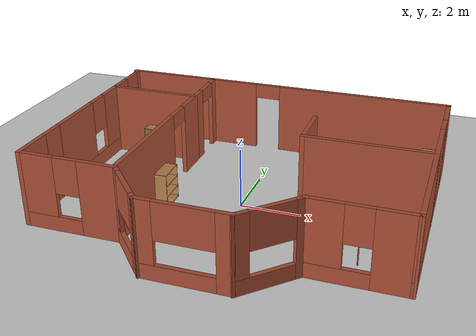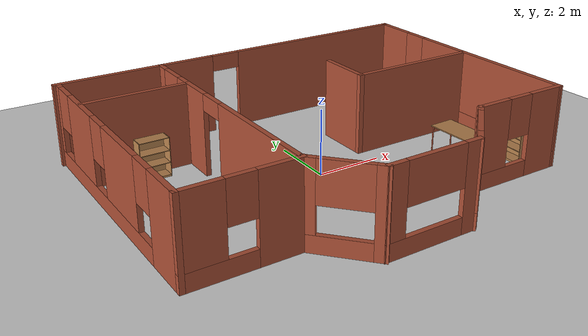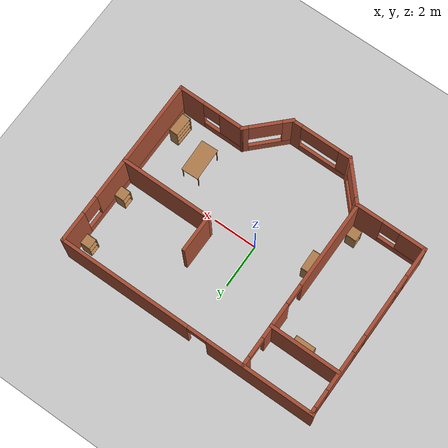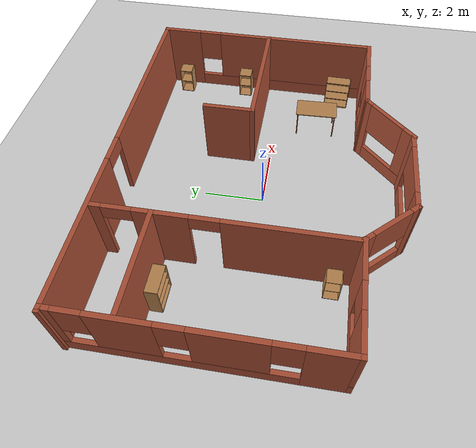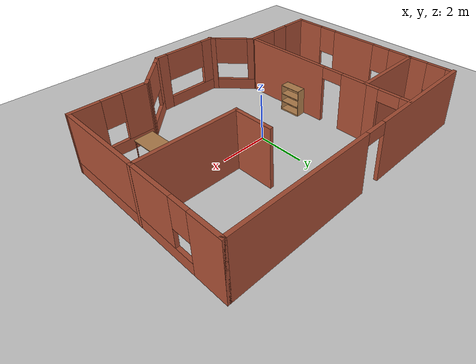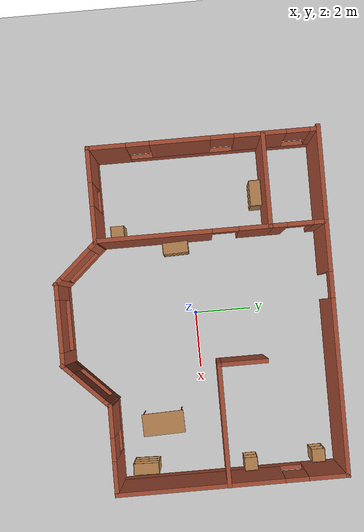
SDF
<sdf version="1.7">
 <world name="default">
  <light name="sun" type="directional">
   <pose>0 0 10 0 -0 0</pose>
   <diffuse>0.8 0.8 0.8 1</diffuse>
   <specular>0.2 0.2 0.2 1</specular>
   <attenuation>
    <range>1000</range>
    <constant>0.9</constant>
    <linear>0.01</linear>
    <quadratic>0.001</quadratic>
   </attenuation>
   <direction>-0.5 0.1 -0.9</direction>
  </light>
  <model name="ground_plane">
   <static>1</static>
   <link name="link">
    <collision name="collision">
     <geometry><plane><normal>0 0 1</normal><size>100 100</size></plane></geometry>
     <surface>
      <contact><collide_bitmask>65535</collide_bitmask></contact>
      <friction><ode><mu>100</mu><mu2>50</mu2></ode></friction>
     </surface>
    </collision>
    <visual name="visual">
     <cast_shadows>0</cast_shadows>
     <geometry><plane><normal>0 0 1</normal><size>100 100</size></plane></geometry>
     <material>
      <script><uri>file://media/materials/scripts/gazebo.material</uri><name>Gazebo/Grey</name></script>
     </material>
    </visual>
   </link>
  </model>
  <gravity>0 0 -9.8</gravity>
  <magnetic_field>6e-06 2.3e-05 -4.2e-05</magnetic_field>
  <atmosphere type="adiabatic"/>
  <physics name="default_physics" default="0" type="ode">
   <max_step_size>0.001</max_step_size>
   <real_time_factor>1</real_time_factor>
   <real_time_update_rate>1000</real_time_update_rate>
  </physics>
  <scene><ambient>0.4 0.4 0.4 1</ambient><background>0.7 0.7 0.7 1</background><shadows>1</shadows></scene>
  <spherical_coordinates>
   <surface_model>EARTH_WGS84</surface_model>
   <latitude_deg>0</latitude_deg>
   <longitude_deg>0</longitude_deg>
   <elevation>0</elevation>
   <heading_deg>0</heading_deg>
  </spherical_coordinates>
  <model name="apartment2">
   <link name="Wall_10">
    <pose>-4.26116 -3.17599 0 0 -0 3.14159</pose>
    <visual name="Wall_10_Visual_0">
     <pose>-1.01463 0 1.25 0 -0 0</pose>
     <geometry><box><size>1.29272 0.15 2.5</size></box></geometry>
     <material>
      <script><uri>file://media/materials/scripts/gazebo.material</uri><name>Gazebo/Bricks</name></script>
      <ambient>1 1 1 1</ambient>
     </material>
     <meta><layer>0</layer></meta>
    </visual>
    <collision name="Wall_10_Collision_0">
     <geometry><box><size>1.29272 0.15 2.5</size></box></geometry>
     <pose>-1.01463 0 1.25 0 -0 0</pose>
    </collision>
    <visual name="Wall_10_Visual_1">
     <pose>0.64636 0 0.25 0 -0 0</pose>
     <geometry><box><size>2.02925 0.15 0.5</size></box></geometry>
     <material>
      <script><uri>file://media/materials/scripts/gazebo.material</uri><name>Gazebo/Bricks</name></script>
      <ambient>1 1 1 1</ambient>
     </material>
     <meta><layer>0</layer></meta>
    </visual>
    <collision name="Wall_10_Collision_1">
     <geometry><box><size>2.02925 0.15 0.5</size></box></geometry>
     <pose>0.64636 0 0.25 0 -0 0</pose>
    </collision>
    <visual name="Wall_10_Visual_2">
     <pose>1.04636 0 1.5 0 -0 0</pose>
     <geometry><box><size>1.22925 0.15 2</size></box></geometry>
     <material>
      <script><uri>file://media/materials/scripts/gazebo.material</uri><name>Gazebo/Bricks</name></script>
      <ambient>1 1 1 1</ambient>
     </material>
     <meta><layer>0</layer></meta>
    </visual>
    <collision name="Wall_10_Collision_2">
     <geometry><box><size>1.22925 0.15 2</size></box></geometry>
     <pose>1.04636 0 1.5 0 -0 0</pose>
    </collision>
    <visual name="Wall_10_Visual_3">
     <pose>0.031734 0 1.9 0 -0 0</pose>
     <geometry><box><size>0.8 0.15 1.2</size></box></geometry>
     <material>
      <script><uri>file://media/materials/scripts/gazebo.material</uri><name>Gazebo/Bricks</name></script>
      <ambient>1 1 1 1</ambient>
     </material>
     <meta><layer>0</layer></meta>
    </visual>
    <collision name="Wall_10_Collision_3">
     <geometry><box><size>0.8 0.15 1.2</size></box></geometry>
     <pose>0.031734 0 1.9 0 -0 0</pose>
    </collision>
   </link>
   <link name="Wall_11">
    <pose>-5.84712 0.749005 0 0 -0 1.5708</pose>
    <visual name="Wall_11_Visual_0">
     <pose>-3.30802 0 1.25 0 -0 0</pose>
     <geometry><box><size>1.38396 0.15 2.5</size></box></geometry>
     <material>
      <script><uri>file://media/materials/scripts/gazebo.material</uri><name>Gazebo/Bricks</name></script>
      <ambient>1 1 1 1</ambient>
     </material>
     <meta><layer>0</layer></meta>
    </visual>
    <collision name="Wall_11_Collision_0">
     <geometry><box><size>1.38396 0.15 2.5</size></box></geometry>
     <pose>-3.30802 0 1.25 0 -0 0</pose>
    </collision>
    <visual name="Wall_11_Visual_1">
     <pose>0.691981 0 0.25 0 -0 0</pose>
     <geometry><box><size>6.61604 0.15 0.5</size></box></geometry>
     <material>
      <script><uri>file://media/materials/scripts/gazebo.material</uri><name>Gazebo/Bricks</name></script>
      <ambient>1 1 1 1</ambient>
     </material>
     <meta><layer>0</layer></meta>
    </visual>
    <collision name="Wall_11_Collision_1">
     <geometry><box><size>6.61604 0.15 0.5</size></box></geometry>
     <pose>0.691981 0 0.25 0 -0 0</pose>
    </collision>
    <visual name="Wall_11_Visual_2">
     <pose>-0.777617 0 1.5 0 -0 0</pose>
     <geometry><box><size>2.07684 0.15 2</size></box></geometry>
     <material>
      <script><uri>file://media/materials/scripts/gazebo.material</uri><name>Gazebo/Bricks</name></script>
      <ambient>1 1 1 1</ambient>
     </material>
     <meta><layer>0</layer></meta>
    </visual>
    <collision name="Wall_11_Collision_2">
     <geometry><box><size>2.07684 0.15 2</size></box></geometry>
     <pose>-0.777617 0 1.5 0 -0 0</pose>
    </collision>
    <visual name="Wall_11_Visual_3">
     <pose>1.95069 0 1.5 0 -0 0</pose>
     <geometry><box><size>1.77978 0.15 2</size></box></geometry>
     <material>
      <script><uri>file://media/materials/scripts/gazebo.material</uri><name>Gazebo/Bricks</name></script>
      <ambient>1 1 1 1</ambient>
     </material>
     <meta><layer>0</layer></meta>
    </visual>
    <collision name="Wall_11_Collision_3">
     <geometry><box><size>1.77978 0.15 2</size></box></geometry>
     <pose>1.95069 0 1.5 0 -0 0</pose>
    </collision>
    <visual name="Wall_11_Visual_4">
     <pose>3.82029 0 1.5 0 -0 0</pose>
     <geometry><box><size>0.359421 0.15 2</size></box></geometry>
     <material>
      <script><uri>file://media/materials/scripts/gazebo.material</uri><name>Gazebo/Bricks</name></script>
      <ambient>1 1 1 1</ambient>
     </material>
     <meta><layer>0</layer></meta>
    </visual>
    <collision name="Wall_11_Collision_4">
     <geometry><box><size>0.359421 0.15 2</size></box></geometry>
     <pose>3.82029 0 1.5 0 -0 0</pose>
    </collision>
    <visual name="Wall_11_Visual_5">
     <pose>-2.21604 0 1.9 0 -0 0</pose>
     <geometry><box><size>0.8 0.15 1.2</size></box></geometry>
     <material>
      <script><uri>file://media/materials/scripts/gazebo.material</uri><name>Gazebo/Bricks</name></script>
      <ambient>1 1 1 1</ambient>
     </material>
     <meta><layer>0</layer></meta>
    </visual>
    <collision name="Wall_11_Collision_5">
     <geometry><box><size>0.8 0.15 1.2</size></box></geometry>
     <pose>-2.21604 0 1.9 0 -0 0</pose>
    </collision>
    <visual name="Wall_11_Visual_6">
     <pose>0.660804 0 1.9 0 -0 0</pose>
     <geometry><box><size>0.8 0.15 1.2</size></box></geometry>
     <material>
      <script><uri>file://media/materials/scripts/gazebo.material</uri><name>Gazebo/Bricks</name></script>
      <ambient>1 1 1 1</ambient>
     </material>
     <meta><layer>0</layer></meta>
    </visual>
    <collision name="Wall_11_Collision_6">
     <geometry><box><size>0.8 0.15 1.2</size></box></geometry>
     <pose>0.660804 0 1.9 0 -0 0</pose>
    </collision>
    <visual name="Wall_11_Visual_7">
     <pose>3.24058 0 1.9 0 -0 0</pose>
     <geometry><box><size>0.8 0.15 1.2</size></box></geometry>
     <material>
      <script><uri>file://media/materials/scripts/gazebo.material</uri><name>Gazebo/Bricks</name></script>
      <ambient>1 1 1 1</ambient>
     </material>
     <meta><layer>0</layer></meta>
    </visual>
    <collision name="Wall_11_Collision_7">
     <geometry><box><size>0.8 0.15 1.2</size></box></geometry>
     <pose>3.24058 0 1.9 0 -0 0</pose>
    </collision>
   </link>
   <link name="Wall_13">
    <pose>-2.70325 3.71033 0 0 0 -1.5708</pose>
    <visual name="Wall_13_Visual_0">
     <pose>-0.773954 0 1.25 0 -0 0</pose>
     <geometry><box><size>0.452092 0.15 2.5</size></box></geometry>
     <material>
      <script><uri>file://media/materials/scripts/gazebo.material</uri><name>Gazebo/Bricks</name></script>
      <ambient>1 1 1 1</ambient>
     </material>
     <meta><layer>0</layer></meta>
    </visual>
    <collision name="Wall_13_Collision_0">
     <geometry><box><size>0.452092 0.15 2.5</size></box></geometry>
     <pose>-0.773954 0 1.25 0 -0 0</pose>
    </collision>
    <visual name="Wall_13_Visual_1">
     <pose>0.676046 0 1.25 0 -0 0</pose>
     <geometry><box><size>0.647908 0.15 2.5</size></box></geometry>
     <material>
      <script><uri>file://media/materials/scripts/gazebo.material</uri><name>Gazebo/Bricks</name></script>
      <ambient>1 1 1 1</ambient>
     </material>
     <meta><layer>0</layer></meta>
    </visual>
    <collision name="Wall_13_Collision_1">
     <geometry><box><size>0.647908 0.15 2.5</size></box></geometry>
     <pose>0.676046 0 1.25 0 -0 0</pose>
    </collision>
    <visual name="Wall_13_Visual_2">
     <pose>-0.097908 0 2.25 0 -0 0</pose>
     <geometry><box><size>0.9 0.15 0.5</size></box></geometry>
     <material>
      <script><uri>file://media/materials/scripts/gazebo.material</uri><name>Gazebo/Bricks</name></script>
      <ambient>1 1 1 1</ambient>
     </material>
     <meta><layer>0</layer></meta>
    </visual>
    <collision name="Wall_13_Collision_2">
     <geometry><box><size>0.9 0.15 0.5</size></box></geometry>
     <pose>-0.097908 0 2.25 0 -0 0</pose>
    </collision>
   </link>
   <link name="Wall_14">
    <collision name="Wall_14_Collision">
     <geometry><box><size>3.25 0.15 2.5</size></box></geometry>
     <pose>0 0 1.25 0 -0 0</pose>
    </collision>
    <visual name="Wall_14_Visual">
     <pose>0 0 1.25 0 -0 0</pose>
     <geometry><box><size>3.25 0.15 2.5</size></box></geometry>
     <material>
      <script><uri>file://media/materials/scripts/gazebo.material</uri><name>Gazebo/Bricks</name></script>
      <ambient>1 1 1 1</ambient>
     </material>
     <meta><layer>0</layer></meta>
    </visual>
    <pose>-4.25325 2.78533 0 0 -0 3.14159</pose>
   </link>
   <link name="Wall_16">
    <pose>-2.70325 -0.139673 0 0 0 -1.5708</pose>
    <visual name="Wall_16_Visual_0">
     <pose>-2.42236 0 1.25 0 -0 0</pose>
     <geometry><box><size>1.15529 0.15 2.5</size></box></geometry>
     <material>
      <script><uri>file://media/materials/scripts/gazebo.material</uri><name>Gazebo/Bricks</name></script>
      <ambient>1 1 1 1</ambient>
     </material>
     <meta><layer>0</layer></meta>
    </visual>
    <collision name="Wall_16_Collision_0">
     <geometry><box><size>1.15529 0.15 2.5</size></box></geometry>
     <pose>-2.42236 0 1.25 0 -0 0</pose>
    </collision>
    <visual name="Wall_16_Visual_1">
     <pose>1.02764 0 1.25 0 -0 0</pose>
     <geometry><box><size>3.94471 0.15 2.5</size></box></geometry>
     <material>
      <script><uri>file://media/materials/scripts/gazebo.material</uri><name>Gazebo/Bricks</name></script>
      <ambient>1 1 1 1</ambient>
     </material>
     <meta><layer>0</layer></meta>
    </visual>
    <collision name="Wall_16_Collision_1">
     <geometry><box><size>3.94471 0.15 2.5</size></box></geometry>
     <pose>1.02764 0 1.25 0 -0 0</pose>
    </collision>
    <visual name="Wall_16_Visual_2">
     <pose>-1.39471 0 2.25 0 -0 0</pose>
     <geometry><box><size>0.9 0.15 0.5</size></box></geometry>
     <material>
      <script><uri>file://media/materials/scripts/gazebo.material</uri><name>Gazebo/Bricks</name></script>
      <ambient>1 1 1 1</ambient>
     </material>
     <meta><layer>0</layer></meta>
    </visual>
    <collision name="Wall_16_Collision_2">
     <geometry><box><size>0.9 0.15 0.5</size></box></geometry>
     <pose>-1.39471 0 2.25 0 -0 0</pose>
    </collision>
   </link>
   <link name="Wall_18">
    <collision name="Wall_18_Collision">
     <geometry><box><size>4.25 0.15 2.5</size></box></geometry>
     <pose>0 0 1.25 0 -0 0</pose>
    </collision>
    <visual name="Wall_18_Visual">
     <pose>0 0 1.25 0 -0 0</pose>
     <geometry><box><size>4.25 0.15 2.5</size></box></geometry>
     <material>
      <script><uri>file://media/materials/scripts/gazebo.material</uri><name>Gazebo/Bricks</name></script>
      <ambient>1 1 1 1</ambient>
     </material>
     <meta><layer>0</layer></meta>
    </visual>
    <pose>3.87727 0.64371 0 0 -0 3.14159</pose>
   </link>
   <link name="Wall_19">
    <collision name="Wall_19_Collision">
     <geometry><box><size>1.75 0.15 2.5</size></box></geometry>
     <pose>0 0 1.25 0 -0 0</pose>
    </collision>
    <visual name="Wall_19_Visual">
     <pose>0 0 1.25 0 -0 0</pose>
     <geometry><box><size>1.75 0.15 2.5</size></box></geometry>
     <material>
      <script><uri>file://media/materials/scripts/gazebo.material</uri><name>Gazebo/Bricks</name></script>
      <ambient>1 1 1 1</ambient>
     </material>
     <meta><layer>0</layer></meta>
    </visual>
    <pose>1.82727 1.44371 0 0 -0 1.5708</pose>
   </link>
   <link name="Wall_4">
    <pose>-0.002273 4.67401 0 0 -0 0</pose>
    <visual name="Wall_4_Visual_0">
     <pose>-3.49667 0 1.25 0 -0 0</pose>
     <geometry><box><size>5.00665 0.15 2.5</size></box></geometry>
     <material>
      <script><uri>file://media/materials/scripts/gazebo.material</uri><name>Gazebo/Bricks</name></script>
      <ambient>1 1 1 1</ambient>
     </material>
     <meta><layer>0</layer></meta>
    </visual>
    <collision name="Wall_4_Collision_0">
     <geometry><box><size>5.00665 0.15 2.5</size></box></geometry>
     <pose>-3.49667 0 1.25 0 -0 0</pose>
    </collision>
    <visual name="Wall_4_Visual_1">
     <pose>2.95333 0 1.25 0 -0 0</pose>
     <geometry><box><size>6.09335 0.15 2.5</size></box></geometry>
     <material>
      <script><uri>file://media/materials/scripts/gazebo.material</uri><name>Gazebo/Bricks</name></script>
      <ambient>1 1 1 1</ambient>
     </material>
     <meta><layer>0</layer></meta>
    </visual>
    <collision name="Wall_4_Collision_1">
     <geometry><box><size>6.09335 0.15 2.5</size></box></geometry>
     <pose>2.95333 0 1.25 0 -0 0</pose>
    </collision>
    <visual name="Wall_4_Visual_2">
     <pose>-0.543346 0 2.25 0 -0 0</pose>
     <geometry><box><size>0.9 0.15 0.5</size></box></geometry>
     <material>
      <script><uri>file://media/materials/scripts/gazebo.material</uri><name>Gazebo/Bricks</name></script>
      <ambient>1 1 1 1</ambient>
     </material>
     <meta><layer>0</layer></meta>
    </visual>
    <collision name="Wall_4_Collision_2">
     <geometry><box><size>0.9 0.15 0.5</size></box></geometry>
     <pose>-0.543346 0 2.25 0 -0 0</pose>
    </collision>
   </link>
   <link name="Wall_5">
    <pose>5.92273 0.749005 0 0 0 -1.5708</pose>
    <visual name="Wall_5_Visual_0">
     <pose>-3.29652 0 1.25 0 -0 0</pose>
     <geometry><box><size>1.40697 0.15 2.5</size></box></geometry>
     <material>
      <script><uri>file://media/materials/scripts/gazebo.material</uri><name>Gazebo/Bricks</name></script>
      <ambient>1 1 1 1</ambient>
     </material>
     <meta><layer>0</layer></meta>
    </visual>
    <collision name="Wall_5_Collision_0">
     <geometry><box><size>1.40697 0.15 2.5</size></box></geometry>
     <pose>-3.29652 0 1.25 0 -0 0</pose>
    </collision>
    <visual name="Wall_5_Visual_1">
     <pose>0.703483 0 0.25 0 -0 0</pose>
     <geometry><box><size>6.59303 0.15 0.5</size></box></geometry>
     <material>
      <script><uri>file://media/materials/scripts/gazebo.material</uri><name>Gazebo/Bricks</name></script>
      <ambient>1 1 1 1</ambient>
     </material>
     <meta><layer>0</layer></meta>
    </visual>
    <collision name="Wall_5_Collision_1">
     <geometry><box><size>6.59303 0.15 0.5</size></box></geometry>
     <pose>0.703483 0 0.25 0 -0 0</pose>
    </collision>
    <visual name="Wall_5_Visual_2">
     <pose>1.10348 0 1.5 0 -0 0</pose>
     <geometry><box><size>5.79303 0.15 2</size></box></geometry>
     <material>
      <script><uri>file://media/materials/scripts/gazebo.material</uri><name>Gazebo/Bricks</name></script>
      <ambient>1 1 1 1</ambient>
     </material>
     <meta><layer>0</layer></meta>
    </visual>
    <collision name="Wall_5_Collision_2">
     <geometry><box><size>5.79303 0.15 2</size></box></geometry>
     <pose>1.10348 0 1.5 0 -0 0</pose>
    </collision>
    <visual name="Wall_5_Visual_3">
     <pose>-2.19303 0 1.9 0 -0 0</pose>
     <geometry><box><size>0.8 0.15 1.2</size></box></geometry>
     <material>
      <script><uri>file://media/materials/scripts/gazebo.material</uri><name>Gazebo/Bricks</name></script>
      <ambient>1 1 1 1</ambient>
     </material>
     <meta><layer>0</layer></meta>
    </visual>
    <collision name="Wall_5_Collision_3">
     <geometry><box><size>0.8 0.15 1.2</size></box></geometry>
     <pose>-2.19303 0 1.9 0 -0 0</pose>
    </collision>
   </link>
   <link name="Wall_6">
    <pose>4.41041 -3.16701 0 0 -0 3.13565</pose>
    <visual name="Wall_6_Visual_0">
     <pose>-0.973207 0 1.25 0 -0 0</pose>
     <geometry><box><size>1.22827 0.15 2.5</size></box></geometry>
     <material>
      <script><uri>file://media/materials/scripts/gazebo.material</uri><name>Gazebo/Bricks</name></script>
      <ambient>1 1 1 1</ambient>
     </material>
     <meta><layer>0</layer></meta>
    </visual>
    <collision name="Wall_6_Collision_0">
     <geometry><box><size>1.22827 0.15 2.5</size></box></geometry>
     <pose>-0.973207 0 1.25 0 -0 0</pose>
    </collision>
    <visual name="Wall_6_Visual_1">
     <pose>0.614136 0 0.25 0 -0 0</pose>
     <geometry><box><size>1.94641 0.15 0.5</size></box></geometry>
     <material>
      <script><uri>file://media/materials/scripts/gazebo.material</uri><name>Gazebo/Bricks</name></script>
      <ambient>1 1 1 1</ambient>
     </material>
     <meta><layer>0</layer></meta>
    </visual>
    <collision name="Wall_6_Collision_1">
     <geometry><box><size>1.94641 0.15 0.5</size></box></geometry>
     <pose>0.614136 0 0.25 0 -0 0</pose>
    </collision>
    <visual name="Wall_6_Visual_2">
     <pose>1.01414 0 1.5 0 -0 0</pose>
     <geometry><box><size>1.14641 0.15 2</size></box></geometry>
     <material>
      <script><uri>file://media/materials/scripts/gazebo.material</uri><name>Gazebo/Bricks</name></script>
      <ambient>1 1 1 1</ambient>
     </material>
     <meta><layer>0</layer></meta>
    </visual>
    <collision name="Wall_6_Collision_2">
     <geometry><box><size>1.14641 0.15 2</size></box></geometry>
     <pose>1.01414 0 1.5 0 -0 0</pose>
    </collision>
    <visual name="Wall_6_Visual_3">
     <pose>0.040929 0 1.9 0 -0 0</pose>
     <geometry><box><size>0.8 0.15 1.2</size></box></geometry>
     <material>
      <script><uri>file://media/materials/scripts/gazebo.material</uri><name>Gazebo/Bricks</name></script>
      <ambient>1 1 1 1</ambient>
     </material>
     <meta><layer>0</layer></meta>
    </visual>
    <collision name="Wall_6_Collision_3">
     <geometry><box><size>0.8 0.15 1.2</size></box></geometry>
     <pose>0.040929 0 1.9 0 -0 0</pose>
    </collision>
   </link>
   <link name="Wall_7">
    <pose>2.15563 -3.90048 0 0 0 -2.35619</pose>
    <visual name="Wall_7_Visual_0">
     <pose>-0.960163 0 1.25 0 -0 0</pose>
     <geometry><box><size>0.329675 0.15 2.5</size></box></geometry>
     <material>
      <script><uri>file://media/materials/scripts/gazebo.material</uri><name>Gazebo/Bricks</name></script>
      <ambient>1 1 1 1</ambient>
     </material>
     <meta><layer>0</layer></meta>
    </visual>
    <collision name="Wall_7_Collision_0">
     <geometry><box><size>0.329675 0.15 2.5</size></box></geometry>
     <pose>-0.960163 0 1.25 0 -0 0</pose>
    </collision>
    <visual name="Wall_7_Visual_1">
     <pose>0.164837 0 0.25 0 -0 0</pose>
     <geometry><box><size>1.92033 0.15 0.5</size></box></geometry>
     <material>
      <script><uri>file://media/materials/scripts/gazebo.material</uri><name>Gazebo/Bricks</name></script>
      <ambient>1 1 1 1</ambient>
     </material>
     <meta><layer>0</layer></meta>
    </visual>
    <collision name="Wall_7_Collision_1">
     <geometry><box><size>1.92033 0.15 0.5</size></box></geometry>
     <pose>0.164837 0 0.25 0 -0 0</pose>
    </collision>
    <visual name="Wall_7_Visual_2">
     <pose>0.864837 0 1.5 0 -0 0</pose>
     <geometry><box><size>0.520325 0.15 2</size></box></geometry>
     <material>
      <script><uri>file://media/materials/scripts/gazebo.material</uri><name>Gazebo/Bricks</name></script>
      <ambient>1 1 1 1</ambient>
     </material>
     <meta><layer>0</layer></meta>
    </visual>
    <collision name="Wall_7_Collision_2">
     <geometry><box><size>0.520325 0.15 2</size></box></geometry>
     <pose>0.864837 0 1.5 0 -0 0</pose>
    </collision>
    <visual name="Wall_7_Visual_3">
     <pose>-0.095325 0 1.9 0 -0 0</pose>
     <geometry><box><size>1.4 0.15 1.2</size></box></geometry>
     <material>
      <script><uri>file://media/materials/scripts/gazebo.material</uri><name>Gazebo/Bricks</name></script>
      <ambient>1 1 1 1</ambient>
     </material>
     <meta><layer>0</layer></meta>
    </visual>
    <collision name="Wall_7_Collision_3">
     <geometry><box><size>1.4 0.15 1.2</size></box></geometry>
     <pose>-0.095325 0 1.9 0 -0 0</pose>
    </collision>
   </link>
   <link name="Wall_8">
    <pose>0.033121 -4.62496 0 0 -0 3.14159</pose>
    <visual name="Wall_8_Visual_0">
     <pose>-1.19382 0 1.25 0 -0 0</pose>
     <geometry><box><size>0.522461 0.15 2.5</size></box></geometry>
     <material>
      <script><uri>file://media/materials/scripts/gazebo.material</uri><name>Gazebo/Bricks</name></script>
      <ambient>1 1 1 1</ambient>
     </material>
     <meta><layer>0</layer></meta>
    </visual>
    <collision name="Wall_8_Collision_0">
     <geometry><box><size>0.522461 0.15 2.5</size></box></geometry>
     <pose>-1.19382 0 1.25 0 -0 0</pose>
    </collision>
    <visual name="Wall_8_Visual_1">
     <pose>0.261231 0 0.25 0 -0 0</pose>
     <geometry><box><size>2.38764 0.15 0.5</size></box></geometry>
     <material>
      <script><uri>file://media/materials/scripts/gazebo.material</uri><name>Gazebo/Bricks</name></script>
      <ambient>1 1 1 1</ambient>
     </material>
     <meta><layer>0</layer></meta>
    </visual>
    <collision name="Wall_8_Collision_1">
     <geometry><box><size>2.38764 0.15 0.5</size></box></geometry>
     <pose>0.261231 0 0.25 0 -0 0</pose>
    </collision>
    <visual name="Wall_8_Visual_2">
     <pose>1.16123 0 1.5 0 -0 0</pose>
     <geometry><box><size>0.587637 0.15 2</size></box></geometry>
     <material>
      <script><uri>file://media/materials/scripts/gazebo.material</uri><name>Gazebo/Bricks</name></script>
      <ambient>1 1 1 1</ambient>
     </material>
     <meta><layer>0</layer></meta>
    </visual>
    <collision name="Wall_8_Collision_2">
     <geometry><box><size>0.587637 0.15 2</size></box></geometry>
     <pose>1.16123 0 1.5 0 -0 0</pose>
    </collision>
    <visual name="Wall_8_Visual_3">
     <pose>-0.032588 0 1.9 0 -0 0</pose>
     <geometry><box><size>1.8 0.15 1.2</size></box></geometry>
     <material>
      <script><uri>file://media/materials/scripts/gazebo.material</uri><name>Gazebo/Bricks</name></script>
      <ambient>1 1 1 1</ambient>
     </material>
     <meta><layer>0</layer></meta>
    </visual>
    <collision name="Wall_8_Collision_3">
     <geometry><box><size>1.8 0.15 1.2</size></box></geometry>
     <pose>-0.032588 0 1.9 0 -0 0</pose>
    </collision>
   </link>
   <link name="Wall_9">
    <pose>-2.01106 -3.90048 0 0 -0 2.30057</pose>
    <visual name="Wall_9_Visual_0">
     <pose>-0.895676 0 1.25 0 -0 0</pose>
     <geometry><box><size>0.350961 0.15 2.5</size></box></geometry>
     <material>
      <script><uri>file://media/materials/scripts/gazebo.material</uri><name>Gazebo/Bricks</name></script>
      <ambient>1 1 1 1</ambient>
     </material>
     <meta><layer>0</layer></meta>
    </visual>
    <collision name="Wall_9_Collision_0">
     <geometry><box><size>0.350961 0.15 2.5</size></box></geometry>
     <pose>-0.895676 0 1.25 0 -0 0</pose>
    </collision>
    <visual name="Wall_9_Visual_1">
     <pose>0.175481 0 0.25 0 -0 0</pose>
     <geometry><box><size>1.79135 0.15 0.5</size></box></geometry>
     <material>
      <script><uri>file://media/materials/scripts/gazebo.material</uri><name>Gazebo/Bricks</name></script>
      <ambient>1 1 1 1</ambient>
     </material>
     <meta><layer>0</layer></meta>
    </visual>
    <collision name="Wall_9_Collision_1">
     <geometry><box><size>1.79135 0.15 0.5</size></box></geometry>
     <pose>0.175481 0 0.25 0 -0 0</pose>
    </collision>
    <visual name="Wall_9_Visual_2">
     <pose>0.875481 0 1.5 0 -0 0</pose>
     <geometry><box><size>0.391351 0.15 2</size></box></geometry>
     <material>
      <script><uri>file://media/materials/scripts/gazebo.material</uri><name>Gazebo/Bricks</name></script>
      <ambient>1 1 1 1</ambient>
     </material>
     <meta><layer>0</layer></meta>
    </visual>
    <collision name="Wall_9_Collision_2">
     <geometry><box><size>0.391351 0.15 2</size></box></geometry>
     <pose>0.875481 0 1.5 0 -0 0</pose>
    </collision>
    <visual name="Wall_9_Visual_3">
     <pose>-0.020195 0 1.9 0 -0 0</pose>
     <geometry><box><size>1.4 0.15 1.2</size></box></geometry>
     <material>
      <script><uri>file://media/materials/scripts/gazebo.material</uri><name>Gazebo/Bricks</name></script>
      <ambient>1 1 1 1</ambient>
     </material>
     <meta><layer>0</layer></meta>
    </visual>
    <collision name="Wall_9_Collision_3">
     <geometry><box><size>1.4 0.15 1.2</size></box></geometry>
     <pose>-0.020195 0 1.9 0 -0 0</pose>
    </collision>
   </link>
   <static>1</static>
  </model>
  <model name="bookshelf">
   <static>1</static>
   <link name="link">
    <inertial><mass>1</mass></inertial>
    <collision name="back">
     <pose>0 0.005 0.6 0 -0 0</pose>
     <geometry><box><size>0.9 0.01 1.2</size></box></geometry>
    </collision>
    <visual name="visual1">
     <pose>0 0.005 0.6 0 -0 0</pose>
     <geometry><box><size>0.9 0.01 1.2</size></box></geometry>
     <material>
      <script><uri>file://media/materials/scripts/gazebo.material</uri><name>Gazebo/Wood</name></script>
     </material>
    </visual>
    <collision name="left_side">
     <pose>0.45 -0.195 0.6 0 -0 0</pose>
     <geometry><box><size>0.02 0.4 1.2</size></box></geometry>
    </collision>
    <visual name="visual2">
     <pose>0.45 -0.195 0.6 0 -0 0</pose>
     <geometry><box><size>0.02 0.4 1.2</size></box></geometry>
     <material>
      <script><uri>file://media/materials/scripts/gazebo.material</uri><name>Gazebo/Wood</name></script>
     </material>
    </visual>
    <collision name="right_side">
     <pose>-0.45 -0.195 0.6 0 -0 0</pose>
     <geometry><box><size>0.02 0.4 1.2</size></box></geometry>
    </collision>
    <visual name="visual3">
     <pose>-0.45 -0.195 0.6 0 -0 0</pose>
     <geometry><box><size>0.02 0.4 1.2</size></box></geometry>
     <material>
      <script><uri>file://media/materials/scripts/gazebo.material</uri><name>Gazebo/Wood</name></script>
     </material>
    </visual>
    <collision name="bottom">
     <pose>0 -0.195 0.03 0 -0 0</pose>
     <geometry><box><size>0.88 0.4 0.06</size></box></geometry>
    </collision>
    <visual name="visual4">
     <pose>0 -0.195 0.03 0 -0 0</pose>
     <geometry><box><size>0.88 0.4 0.06</size></box></geometry>
     <material>
      <script><uri>file://media/materials/scripts/gazebo.material</uri><name>Gazebo/Wood</name></script>
     </material>
    </visual>
    <collision name="top">
     <pose>0 -0.195 1.19 0 -0 0</pose>
     <geometry><box><size>0.88 0.4 0.02</size></box></geometry>
    </collision>
    <visual name="visual5">
     <pose>0 -0.195 1.19 0 -0 0</pose>
     <geometry><box><size>0.88 0.4 0.02</size></box></geometry>
     <material>
      <script><uri>file://media/materials/scripts/gazebo.material</uri><name>Gazebo/Wood</name></script>
     </material>
    </visual>
    <collision name="low_shelf">
     <pose>0 -0.195 0.43 0 -0 0</pose>
     <geometry><box><size>0.88 0.4 0.02</size></box></geometry>
    </collision>
    <visual name="visual6">
     <pose>0 -0.195 0.43 0 -0 0</pose>
     <geometry><box><size>0.88 0.4 0.02</size></box></geometry>
     <material>
      <script><uri>file://media/materials/scripts/gazebo.material</uri><name>Gazebo/Wood</name></script>
     </material>
    </visual>
    <collision name="high_shelf">
     <pose>0 -0.195 0.8 0 -0 0</pose>
     <geometry><box><size>0.88 0.4 0.02</size></box></geometry>
    </collision>
    <visual name="visual7">
     <pose>0 -0.195 0.8 0 -0 0</pose>
     <geometry><box><size>0.88 0.4 0.02</size></box></geometry>
     <material>
      <script><uri>file://media/materials/scripts/gazebo.material</uri><name>Gazebo/Wood</name></script>
     </material>
    </visual>
   </link>
   <pose>-2.56264 -0.533246 0 0 -0 1.6</pose>
  </model>
  <model name="bookshelf_0">
   <static>1</static>
   <link name="link">
    <inertial><mass>1</mass></inertial>
    <collision name="back">
     <pose>0 0.005 0.6 0 -0 0</pose>
     <geometry><box><size>0.9 0.01 1.2</size></box></geometry>
    </collision>
    <visual name="visual1">
     <pose>0 0.005 0.6 0 -0 0</pose>
     <geometry><box><size>0.9 0.01 1.2</size></box></geometry>
     <material>
      <script><uri>file://media/materials/scripts/gazebo.material</uri><name>Gazebo/Wood</name></script>
     </material>
    </visual>
    <collision name="left_side">
     <pose>0.45 -0.195 0.6 0 -0 0</pose>
     <geometry><box><size>0.02 0.4 1.2</size></box></geometry>
    </collision>
    <visual name="visual2">
     <pose>0.45 -0.195 0.6 0 -0 0</pose>
     <geometry><box><size>0.02 0.4 1.2</size></box></geometry>
     <material>
      <script><uri>file://media/materials/scripts/gazebo.material</uri><name>Gazebo/Wood</name></script>
     </material>
    </visual>
    <collision name="right_side">
     <pose>-0.45 -0.195 0.6 0 -0 0</pose>
     <geometry><box><size>0.02 0.4 1.2</size></box></geometry>
    </collision>
    <visual name="visual3">
     <pose>-0.45 -0.195 0.6 0 -0 0</pose>
     <geometry><box><size>0.02 0.4 1.2</size></box></geometry>
     <material>
      <script><uri>file://media/materials/scripts/gazebo.material</uri><name>Gazebo/Wood</name></script>
     </material>
    </visual>
    <collision name="bottom">
     <pose>0 -0.195 0.03 0 -0 0</pose>
     <geometry><box><size>0.88 0.4 0.06</size></box></geometry>
    </collision>
    <visual name="visual4">
     <pose>0 -0.195 0.03 0 -0 0</pose>
     <geometry><box><size>0.88 0.4 0.06</size></box></geometry>
     <material>
      <script><uri>file://media/materials/scripts/gazebo.material</uri><name>Gazebo/Wood</name></script>
     </material>
    </visual>
    <collision name="top">
     <pose>0 -0.195 1.19 0 -0 0</pose>
     <geometry><box><size>0.88 0.4 0.02</size></box></geometry>
    </collision>
    <visual name="visual5">
     <pose>0 -0.195 1.19 0 -0 0</pose>
     <geometry><box><size>0.88 0.4 0.02</size></box></geometry>
     <material>
      <script><uri>file://media/materials/scripts/gazebo.material</uri><name>Gazebo/Wood</name></script>
     </material>
    </visual>
    <collision name="low_shelf">
     <pose>0 -0.195 0.43 0 -0 0</pose>
     <geometry><box><size>0.88 0.4 0.02</size></box></geometry>
    </collision>
    <visual name="visual6">
     <pose>0 -0.195 0.43 0 -0 0</pose>
     <geometry><box><size>0.88 0.4 0.02</size></box></geometry>
     <material>
      <script><uri>file://media/materials/scripts/gazebo.material</uri><name>Gazebo/Wood</name></script>
     </material>
    </visual>
    <collision name="high_shelf">
     <pose>0 -0.195 0.8 0 -0 0</pose>
     <geometry><box><size>0.88 0.4 0.02</size></box></geometry>
    </collision>
    <visual name="visual7">
     <pose>0 -0.195 0.8 0 -0 0</pose>
     <geometry><box><size>0.88 0.4 0.02</size></box></geometry>
     <material>
      <script><uri>file://media/materials/scripts/gazebo.material</uri><name>Gazebo/Wood</name></script>
     </material>
    </visual>
   </link>
   <pose>-4.0527 2.66789 0 0 -0 0</pose>
  </model>
  <model name="table">
   <static>1</static>
   <link name="link">
    <collision name="surface">
     <pose>0 0 1 0 -0 0</pose>
     <geometry><box><size>1.5 0.8 0.03</size></box></geometry>
     <surface><friction><ode><mu>0.6</mu><mu2>0.6</mu2></ode></friction></surface>
    </collision>
    <visual name="visual1">
     <pose>0 0 1 0 -0 0</pose>
     <geometry><box><size>1.5 0.8 0.03</size></box></geometry>
     <material>
      <script><uri>file://media/materials/scripts/gazebo.material</uri><name>Gazebo/Wood</name></script>
     </material>
    </visual>
    <collision name="front_left_leg">
     <pose>0.68 0.38 0.5 0 -0 0</pose>
     <geometry><cylinder><radius>0.02</radius><length>1</length></cylinder></geometry>
    </collision>
    <visual name="front_left_leg">
     <pose>0.68 0.38 0.5 0 -0 0</pose>
     <geometry><cylinder><radius>0.02</radius><length>1</length></cylinder></geometry>
     <material>
      <script><uri>file://media/materials/scripts/gazebo.material</uri><name>Gazebo/Bricks</name></script>
     </material>
    </visual>
    <collision name="front_right_leg">
     <pose>0.68 -0.38 0.5 0 -0 0</pose>
     <geometry><cylinder><radius>0.02</radius><length>1</length></cylinder></geometry>
    </collision>
    <visual name="front_right_leg">
     <pose>0.68 -0.38 0.5 0 -0 0</pose>
     <geometry><cylinder><radius>0.02</radius><length>1</length></cylinder></geometry>
     <material>
      <script><uri>file://media/materials/scripts/gazebo.material</uri><name>Gazebo/Bricks</name></script>
     </material>
    </visual>
    <collision name="back_right_leg">
     <pose>-0.68 -0.38 0.5 0 -0 0</pose>
     <geometry><cylinder><radius>0.02</radius><length>1</length></cylinder></geometry>
    </collision>
    <visual name="back_right_leg">
     <pose>-0.68 -0.38 0.5 0 -0 0</pose>
     <geometry><cylinder><radius>0.02</radius><length>1</length></cylinder></geometry>
     <material>
      <script><uri>file://media/materials/scripts/gazebo.material</uri><name>Gazebo/Bricks</name></script>
     </material>
    </visual>
    <collision name="back_left_leg">
     <pose>-0.68 0.38 0.5 0 -0 0</pose>
     <geometry><cylinder><radius>0.02</radius><length>1</length></cylinder></geometry>
    </collision>
    <visual name="back_left_leg">
     <pose>-0.68 0.38 0.5 0 -0 0</pose>
     <geometry><cylinder><radius>0.02</radius><length>1</length></cylinder></geometry>
     <material>
      <script><uri>file://media/materials/scripts/gazebo.material</uri><name>Gazebo/Bricks</name></script>
     </material>
    </visual>
   </link>
   <pose>3.84964 -1.49718 0 0 -0 1.6</pose>
  </model>
  <plugin name="collision_map_creator" filename="libcollision_map_creator.so"/>
  <model name="cabinet">
   <static>1</static>
   <link name="cabinet_bottom_plate">
    <inertial>
     <pose>0 0 -1 0 -0 0</pose>
     <inertia><ixx>2.05</ixx><ixy>0</ixy><ixz>0</ixz><iyy>2.05</iyy><iyz>0</iyz><izz>2.05</izz></inertia>
     <mass>25</mass>
    </inertial>
    <collision name="cabinet_bottom_plate_geom">
     <pose>0 0 0.01 0 -0 0</pose>
     <geometry><box><size>0.45 0.45 0.02</size></box></geometry>
    </collision>
    <visual name="cabinet_bottom_plate_geom_visual">
     <pose>0 0 0.01 0 -0 0</pose>
     <geometry><box><size>0.45 0.45 0.02</size></box></geometry>
     <material>
      <script><uri>file://media/materials/scripts/gazebo.material</uri><name>Gazebo/Wood</name></script>
     </material>
    </visual>
    <collision name="cabinet_bottom_plate_geom_cabinet_back_plate">
     <pose>0.235 0 0.51 0 -0 0</pose>
     <geometry><box><size>0.02 0.45 1.02</size></box></geometry>
    </collision>
    <visual name="cabinet_bottom_plate_geom_cabinet_back_plate_visual">
     <pose>0.235 0 0.51 0 -0 0</pose>
     <geometry><box><size>0.02 0.45 1.02</size></box></geometry>
     <material>
      <script><uri>file://media/materials/scripts/gazebo.material</uri><name>Gazebo/Wood</name></script>
     </material>
    </visual>
    <collision name="cabinet_bottom_plate_geom_cabinet_left_plate">
     <pose>0 0.235 0.51 0 -0 0</pose>
     <geometry><box><size>0.45 0.02 1.02</size></box></geometry>
    </collision>
    <visual name="cabinet_bottom_plate_geom_cabinet_left_plate_visual">
     <pose>0 0.235 0.51 0 -0 0</pose>
     <geometry><box><size>0.45 0.02 1.02</size></box></geometry>
     <material>
      <script><uri>file://media/materials/scripts/gazebo.material</uri><name>Gazebo/Wood</name></script>
     </material>
    </visual>
    <collision name="cabinet_bottom_plate_geom_cabinet_middle_plate">
     <pose>0 0 0.51 0 -0 0</pose>
     <geometry><box><size>0.45 0.45 0.02</size></box></geometry>
    </collision>
    <visual name="cabinet_bottom_plate_geom_cabinet_middle_plate_visual">
     <pose>0 0 0.51 0 -0 0</pose>
     <geometry><box><size>0.45 0.45 0.02</size></box></geometry>
     <material>
      <script><uri>file://media/materials/scripts/gazebo.material</uri><name>Gazebo/Wood</name></script>
     </material>
    </visual>
    <collision name="cabinet_bottom_plate_geom_cabinet_right_plate">
     <pose>0 -0.235 0.51 0 -0 0</pose>
     <geometry><box><size>0.45 0.02 1.02</size></box></geometry>
    </collision>
    <visual name="cabinet_bottom_plate_geom_cabinet_right_plate_visual">
     <pose>0 -0.235 0.51 0 -0 0</pose>
     <geometry><box><size>0.45 0.02 1.02</size></box></geometry>
     <material>
      <script><uri>file://media/materials/scripts/gazebo.material</uri><name>Gazebo/Wood</name></script>
     </material>
    </visual>
    <collision name="cabinet_bottom_plate_geom_cabinet_top_plate">
     <pose>0 0 1.01 0 -0 0</pose>
     <geometry><box><size>0.45 0.45 0.02</size></box></geometry>
    </collision>
    <visual name="cabinet_bottom_plate_geom_cabinet_top_plate_visual">
     <pose>0 0 1.01 0 -0 0</pose>
     <geometry><box><size>0.45 0.45 0.02</size></box></geometry>
     <material>
      <script><uri>file://media/materials/scripts/gazebo.material</uri><name>Gazebo/Wood</name></script>
     </material>
    </visual>
   </link>
   <pose>5.46161 3.92829 0 0 -0 0</pose>
  </model>
  <model name="cabinet_0">
   <static>1</static>
   <link name="cabinet_bottom_plate">
    <inertial>
     <pose>0 0 -1 0 -0 0</pose>
     <inertia><ixx>2.05</ixx><ixy>0</ixy><ixz>0</ixz><iyy>2.05</iyy><iyz>0</iyz><izz>2.05</izz></inertia>
     <mass>25</mass>
    </inertial>
    <collision name="cabinet_bottom_plate_geom">
     <pose>0 0 0.01 0 -0 0</pose>
     <geometry><box><size>0.45 0.45 0.02</size></box></geometry>
    </collision>
    <visual name="cabinet_bottom_plate_geom_visual">
     <pose>0 0 0.01 0 -0 0</pose>
     <geometry><box><size>0.45 0.45 0.02</size></box></geometry>
     <material>
      <script><uri>file://media/materials/scripts/gazebo.material</uri><name>Gazebo/Wood</name></script>
     </material>
    </visual>
    <collision name="cabinet_bottom_plate_geom_cabinet_back_plate">
     <pose>0.235 0 0.51 0 -0 0</pose>
     <geometry><box><size>0.02 0.45 1.02</size></box></geometry>
    </collision>
    <visual name="cabinet_bottom_plate_geom_cabinet_back_plate_visual">
     <pose>0.235 0 0.51 0 -0 0</pose>
     <geometry><box><size>0.02 0.45 1.02</size></box></geometry>
     <material>
      <script><uri>file://media/materials/scripts/gazebo.material</uri><name>Gazebo/Wood</name></script>
     </material>
    </visual>
    <collision name="cabinet_bottom_plate_geom_cabinet_left_plate">
     <pose>0 0.235 0.51 0 -0 0</pose>
     <geometry><box><size>0.45 0.02 1.02</size></box></geometry>
    </collision>
    <visual name="cabinet_bottom_plate_geom_cabinet_left_plate_visual">
     <pose>0 0.235 0.51 0 -0 0</pose>
     <geometry><box><size>0.45 0.02 1.02</size></box></geometry>
     <material>
      <script><uri>file://media/materials/scripts/gazebo.material</uri><name>Gazebo/Wood</name></script>
     </material>
    </visual>
    <collision name="cabinet_bottom_plate_geom_cabinet_middle_plate">
     <pose>0 0 0.51 0 -0 0</pose>
     <geometry><box><size>0.45 0.45 0.02</size></box></geometry>
    </collision>
    <visual name="cabinet_bottom_plate_geom_cabinet_middle_plate_visual">
     <pose>0 0 0.51 0 -0 0</pose>
     <geometry><box><size>0.45 0.45 0.02</size></box></geometry>
     <material>
      <script><uri>file://media/materials/scripts/gazebo.material</uri><name>Gazebo/Wood</name></script>
     </material>
    </visual>
    <collision name="cabinet_bottom_plate_geom_cabinet_right_plate">
     <pose>0 -0.235 0.51 0 -0 0</pose>
     <geometry><box><size>0.45 0.02 1.02</size></box></geometry>
    </collision>
    <visual name="cabinet_bottom_plate_geom_cabinet_right_plate_visual">
     <pose>0 -0.235 0.51 0 -0 0</pose>
     <geometry><box><size>0.45 0.02 1.02</size></box></geometry>
     <material>
      <script><uri>file://media/materials/scripts/gazebo.material</uri><name>Gazebo/Wood</name></script>
     </material>
    </visual>
    <collision name="cabinet_bottom_plate_geom_cabinet_top_plate">
     <pose>0 0 1.01 0 -0 0</pose>
     <geometry><box><size>0.45 0.45 0.02</size></box></geometry>
    </collision>
    <visual name="cabinet_bottom_plate_geom_cabinet_top_plate_visual">
     <pose>0 0 1.01 0 -0 0</pose>
     <geometry><box><size>0.45 0.45 0.02</size></box></geometry>
     <material>
      <script><uri>file://media/materials/scripts/gazebo.material</uri><name>Gazebo/Wood</name></script>
     </material>
    </visual>
   </link>
   <pose>5.55937 1.50433 0 0 -0 0</pose>
  </model>
  <model name="bookshelf_1">
   <static>1</static>
   <link name="link">
    <inertial><mass>1</mass></inertial>
    <collision name="back">
     <pose>0 0.005 0.6 0 -0 0</pose>
     <geometry><box><size>0.9 0.01 1.2</size></box></geometry>
    </collision>
    <visual name="visual1">
     <pose>0 0.005 0.6 0 -0 0</pose>
     <geometry><box><size>0.9 0.01 1.2</size></box></geometry>
     <material>
      <script><uri>file://media/materials/scripts/gazebo.material</uri><name>Gazebo/Wood</name></script>
     </material>
    </visual>
    <collision name="left_side">
     <pose>0.45 -0.195 0.6 0 -0 0</pose>
     <geometry><box><size>0.02 0.4 1.2</size></box></geometry>
    </collision>
    <visual name="visual2">
     <pose>0.45 -0.195 0.6 0 -0 0</pose>
     <geometry><box><size>0.02 0.4 1.2</size></box></geometry>
     <material>
      <script><uri>file://media/materials/scripts/gazebo.material</uri><name>Gazebo/Wood</name></script>
     </material>
    </visual>
    <collision name="right_side">
     <pose>-0.45 -0.195 0.6 0 -0 0</pose>
     <geometry><box><size>0.02 0.4 1.2</size></box></geometry>
    </collision>
    <visual name="visual3">
     <pose>-0.45 -0.195 0.6 0 -0 0</pose>
     <geometry><box><size>0.02 0.4 1.2</size></box></geometry>
     <material>
      <script><uri>file://media/materials/scripts/gazebo.material</uri><name>Gazebo/Wood</name></script>
     </material>
    </visual>
    <collision name="bottom">
     <pose>0 -0.195 0.03 0 -0 0</pose>
     <geometry><box><size>0.88 0.4 0.06</size></box></geometry>
    </collision>
    <visual name="visual4">
     <pose>0 -0.195 0.03 0 -0 0</pose>
     <geometry><box><size>0.88 0.4 0.06</size></box></geometry>
     <material>
      <script><uri>file://media/materials/scripts/gazebo.material</uri><name>Gazebo/Wood</name></script>
     </material>
    </visual>
    <collision name="top">
     <pose>0 -0.195 1.19 0 -0 0</pose>
     <geometry><box><size>0.88 0.4 0.02</size></box></geometry>
    </collision>
    <visual name="visual5">
     <pose>0 -0.195 1.19 0 -0 0</pose>
     <geometry><box><size>0.88 0.4 0.02</size></box></geometry>
     <material>
      <script><uri>file://media/materials/scripts/gazebo.material</uri><name>Gazebo/Wood</name></script>
     </material>
    </visual>
    <collision name="low_shelf">
     <pose>0 -0.195 0.43 0 -0 0</pose>
     <geometry><box><size>0.88 0.4 0.02</size></box></geometry>
    </collision>
    <visual name="visual6">
     <pose>0 -0.195 0.43 0 -0 0</pose>
     <geometry><box><size>0.88 0.4 0.02</size></box></geometry>
     <material>
      <script><uri>file://media/materials/scripts/gazebo.material</uri><name>Gazebo/Wood</name></script>
     </material>
    </visual>
    <collision name="high_shelf">
     <pose>0 -0.195 0.8 0 -0 0</pose>
     <geometry><box><size>0.88 0.4 0.02</size></box></geometry>
    </collision>
    <visual name="visual7">
     <pose>0 -0.195 0.8 0 -0 0</pose>
     <geometry><box><size>0.88 0.4 0.02</size></box></geometry>
     <material>
      <script><uri>file://media/materials/scripts/gazebo.material</uri><name>Gazebo/Wood</name></script>
     </material>
    </visual>
   </link>
   <pose>5.57453 -2.23583 0 0 0 -1.6</pose>
  </model>
  <model name="cabinet_1">
   <static>1</static>
   <link name="cabinet_bottom_plate">
    <inertial>
     <pose>0 0 -1 0 -0 0</pose>
     <inertia><ixx>2.05</ixx><ixy>0</ixy><ixz>0</ixz><iyy>2.05</iyy><iyz>0</iyz><izz>2.05</izz></inertia>
     <mass>25</mass>
    </inertial>
    <collision name="cabinet_bottom_plate_geom">
     <pose>0 0 0.01 0 -0 0</pose>
     <geometry><box><size>0.45 0.45 0.02</size></box></geometry>
    </collision>
    <visual name="cabinet_bottom_plate_geom_visual">
     <pose>0 0 0.01 0 -0 0</pose>
     <geometry><box><size>0.45 0.45 0.02</size></box></geometry>
     <material>
      <script><uri>file://media/materials/scripts/gazebo.material</uri><name>Gazebo/Wood</name></script>
     </material>
    </visual>
    <collision name="cabinet_bottom_plate_geom_cabinet_back_plate">
     <pose>0.235 0 0.51 0 -0 0</pose>
     <geometry><box><size>0.02 0.45 1.02</size></box></geometry>
    </collision>
    <visual name="cabinet_bottom_plate_geom_cabinet_back_plate_visual">
     <pose>0.235 0 0.51 0 -0 0</pose>
     <geometry><box><size>0.02 0.45 1.02</size></box></geometry>
     <material>
      <script><uri>file://media/materials/scripts/gazebo.material</uri><name>Gazebo/Wood</name></script>
     </material>
    </visual>
    <collision name="cabinet_bottom_plate_geom_cabinet_left_plate">
     <pose>0 0.235 0.51 0 -0 0</pose>
     <geometry><box><size>0.45 0.02 1.02</size></box></geometry>
    </collision>
    <visual name="cabinet_bottom_plate_geom_cabinet_left_plate_visual">
     <pose>0 0.235 0.51 0 -0 0</pose>
     <geometry><box><size>0.45 0.02 1.02</size></box></geometry>
     <material>
      <script><uri>file://media/materials/scripts/gazebo.material</uri><name>Gazebo/Wood</name></script>
     </material>
    </visual>
    <collision name="cabinet_bottom_plate_geom_cabinet_middle_plate">
     <pose>0 0 0.51 0 -0 0</pose>
     <geometry><box><size>0.45 0.45 0.02</size></box></geometry>
    </collision>
    <visual name="cabinet_bottom_plate_geom_cabinet_middle_plate_visual">
     <pose>0 0 0.51 0 -0 0</pose>
     <geometry><box><size>0.45 0.45 0.02</size></box></geometry>
     <material>
      <script><uri>file://media/materials/scripts/gazebo.material</uri><name>Gazebo/Wood</name></script>
     </material>
    </visual>
    <collision name="cabinet_bottom_plate_geom_cabinet_right_plate">
     <pose>0 -0.235 0.51 0 -0 0</pose>
     <geometry><box><size>0.45 0.02 1.02</size></box></geometry>
    </collision>
    <visual name="cabinet_bottom_plate_geom_cabinet_right_plate_visual">
     <pose>0 -0.235 0.51 0 -0 0</pose>
     <geometry><box><size>0.45 0.02 1.02</size></box></geometry>
     <material>
      <script><uri>file://media/materials/scripts/gazebo.material</uri><name>Gazebo/Wood</name></script>
     </material>
    </visual>
    <collision name="cabinet_bottom_plate_geom_cabinet_top_plate">
     <pose>0 0 1.01 0 -0 0</pose>
     <geometry><box><size>0.45 0.45 0.02</size></box></geometry>
    </collision>
    <visual name="cabinet_bottom_plate_geom_cabinet_top_plate_visual">
     <pose>0 0 1.01 0 -0 0</pose>
     <geometry><box><size>0.45 0.45 0.02</size></box></geometry>
     <material>
      <script><uri>file://media/materials/scripts/gazebo.material</uri><name>Gazebo/Wood</name></script>
     </material>
    </visual>
   </link>
   <pose>-3.09803 -2.54537 0 0 -0 0</pose>
  </model>
 </world>
</sdf>
